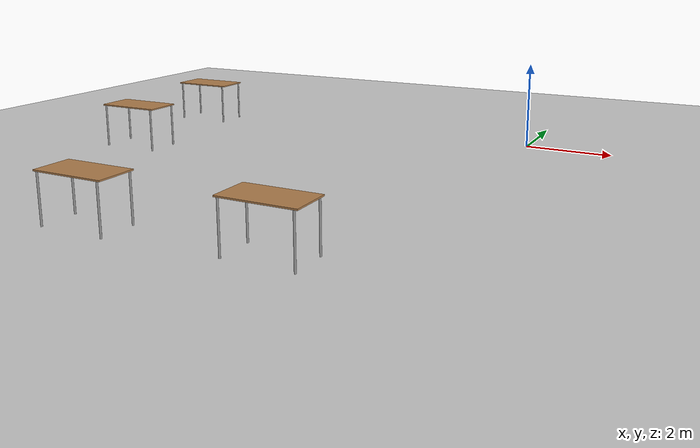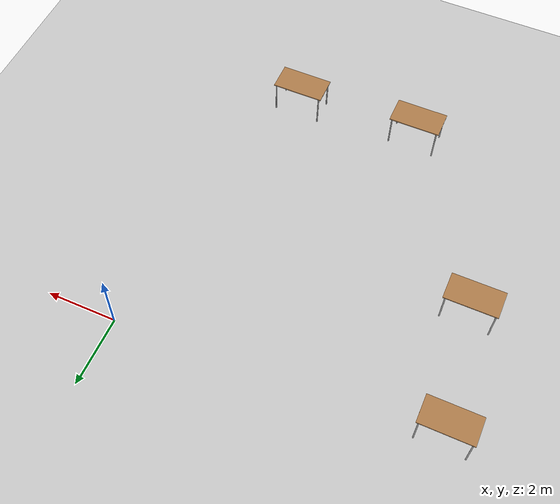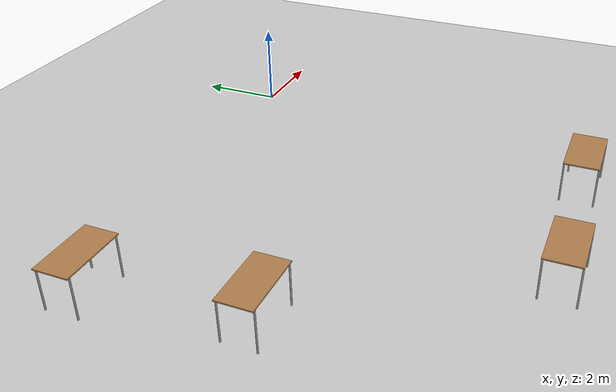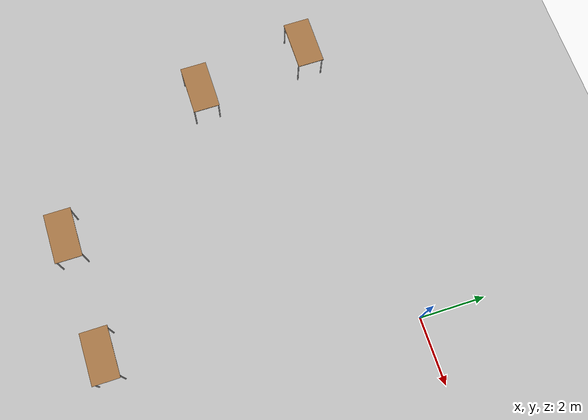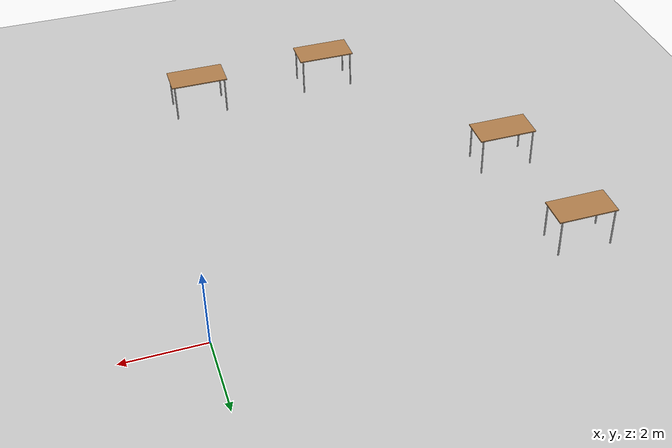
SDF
<sdf version="1.6">
 <world name="default">
  <model name="ground_plane">
   <static>1</static>
   <link name="link">
    <collision name="collision">
     <geometry><plane><normal>0 0 1</normal><size>100 100</size></plane></geometry>
     <surface>
      <contact><collide_bitmask>65535</collide_bitmask></contact>
      <friction><ode><mu>100</mu><mu2>50</mu2></ode></friction>
     </surface>
    </collision>
    <visual name="visual">
     <cast_shadows>0</cast_shadows>
     <geometry><plane><normal>0 0 1</normal><size>100 100</size></plane></geometry>
     <material>
      <script><uri>file://media/materials/scripts/gazebo.material</uri><name>Gazebo/Grey</name></script>
     </material>
    </visual>
   </link>
  </model>
  <model name="table">
   <static>1</static>
   <link name="link">
    <collision name="surface">
     <pose>0 0 1 0 -0 0</pose>
     <geometry><box><size>1.5 0.8 0.03</size></box></geometry>
     <surface><friction><ode><mu>0.6</mu><mu2>0.6</mu2></ode></friction></surface>
    </collision>
    <visual name="visual1">
     <pose>0 0 1 0 -0 0</pose>
     <geometry><box><size>1.5 0.8 0.03</size></box></geometry>
     <material>
      <script><uri>file://media/materials/scripts/gazebo.material</uri><name>Gazebo/Wood</name></script>
     </material>
    </visual>
    <collision name="front_left_leg">
     <pose>0.68 0.38 0.5 0 -0 0</pose>
     <geometry><cylinder><radius>0.02</radius><length>1</length></cylinder></geometry>
    </collision>
    <visual name="front_left_leg">
     <pose>0.68 0.38 0.5 0 -0 0</pose>
     <geometry><cylinder><radius>0.02</radius><length>1</length></cylinder></geometry>
     <material>
      <script><uri>file://media/materials/scripts/gazebo.material</uri><name>Gazebo/Grey</name></script>
     </material>
    </visual>
    <collision name="front_right_leg">
     <pose>0.68 -0.38 0.5 0 -0 0</pose>
     <geometry><cylinder><radius>0.02</radius><length>1</length></cylinder></geometry>
    </collision>
    <visual name="front_right_leg">
     <pose>0.68 -0.38 0.5 0 -0 0</pose>
     <geometry><cylinder><radius>0.02</radius><length>1</length></cylinder></geometry>
     <material>
      <script><uri>file://media/materials/scripts/gazebo.material</uri><name>Gazebo/Grey</name></script>
     </material>
    </visual>
    <collision name="back_right_leg">
     <pose>-0.68 -0.38 0.5 0 -0 0</pose>
     <geometry><cylinder><radius>0.02</radius><length>1</length></cylinder></geometry>
    </collision>
    <visual name="back_right_leg">
     <pose>-0.68 -0.38 0.5 0 -0 0</pose>
     <geometry><cylinder><radius>0.02</radius><length>1</length></cylinder></geometry>
     <material>
      <script><uri>file://media/materials/scripts/gazebo.material</uri><name>Gazebo/Grey</name></script>
     </material>
    </visual>
    <collision name="back_left_leg">
     <pose>-0.68 0.38 0.5 0 -0 0</pose>
     <geometry><cylinder><radius>0.02</radius><length>1</length></cylinder></geometry>
    </collision>
    <visual name="back_left_leg">
     <pose>-0.68 0.38 0.5 0 -0 0</pose>
     <geometry><cylinder><radius>0.02</radius><length>1</length></cylinder></geometry>
     <material>
      <script><uri>file://media/materials/scripts/gazebo.material</uri><name>Gazebo/Grey</name></script>
     </material>
    </visual>
   </link>
   <pose>-8.52505 -4.06307 0 0 -0 0</pose>
  </model>
  <model name="table_0">
   <static>1</static>
   <link name="link">
    <collision name="surface">
     <pose>0 0 1 0 -0 0</pose>
     <geometry><box><size>1.5 0.8 0.03</size></box></geometry>
     <surface><friction><ode><mu>0.6</mu><mu2>0.6</mu2></ode></friction></surface>
    </collision>
    <visual name="visual1">
     <pose>0 0 1 0 -0 0</pose>
     <geometry><box><size>1.5 0.8 0.03</size></box></geometry>
     <material>
      <script><uri>file://media/materials/scripts/gazebo.material</uri><name>Gazebo/Wood</name></script>
     </material>
    </visual>
    <collision name="front_left_leg">
     <pose>0.68 0.38 0.5 0 -0 0</pose>
     <geometry><cylinder><radius>0.02</radius><length>1</length></cylinder></geometry>
    </collision>
    <visual name="front_left_leg">
     <pose>0.68 0.38 0.5 0 -0 0</pose>
     <geometry><cylinder><radius>0.02</radius><length>1</length></cylinder></geometry>
     <material>
      <script><uri>file://media/materials/scripts/gazebo.material</uri><name>Gazebo/Grey</name></script>
     </material>
    </visual>
    <collision name="front_right_leg">
     <pose>0.68 -0.38 0.5 0 -0 0</pose>
     <geometry><cylinder><radius>0.02</radius><length>1</length></cylinder></geometry>
    </collision>
    <visual name="front_right_leg">
     <pose>0.68 -0.38 0.5 0 -0 0</pose>
     <geometry><cylinder><radius>0.02</radius><length>1</length></cylinder></geometry>
     <material>
      <script><uri>file://media/materials/scripts/gazebo.material</uri><name>Gazebo/Grey</name></script>
     </material>
    </visual>
    <collision name="back_right_leg">
     <pose>-0.68 -0.38 0.5 0 -0 0</pose>
     <geometry><cylinder><radius>0.02</radius><length>1</length></cylinder></geometry>
    </collision>
    <visual name="back_right_leg">
     <pose>-0.68 -0.38 0.5 0 -0 0</pose>
     <geometry><cylinder><radius>0.02</radius><length>1</length></cylinder></geometry>
     <material>
      <script><uri>file://media/materials/scripts/gazebo.material</uri><name>Gazebo/Grey</name></script>
     </material>
    </visual>
    <collision name="back_left_leg">
     <pose>-0.68 0.38 0.5 0 -0 0</pose>
     <geometry><cylinder><radius>0.02</radius><length>1</length></cylinder></geometry>
    </collision>
    <visual name="back_left_leg">
     <pose>-0.68 0.38 0.5 0 -0 0</pose>
     <geometry><cylinder><radius>0.02</radius><length>1</length></cylinder></geometry>
     <material>
      <script><uri>file://media/materials/scripts/gazebo.material</uri><name>Gazebo/Grey</name></script>
     </material>
    </visual>
   </link>
   <pose>-9.0063 -0.577641 0 0 -0 0</pose>
  </model>
  <model name="table_1">
   <static>1</static>
   <link name="link">
    <collision name="surface">
     <pose>0 0 1 0 -0 0</pose>
     <geometry><box><size>1.5 0.8 0.03</size></box></geometry>
     <surface><friction><ode><mu>0.6</mu><mu2>0.6</mu2></ode></friction></surface>
    </collision>
    <visual name="visual1">
     <pose>0 0 1 0 -0 0</pose>
     <geometry><box><size>1.5 0.8 0.03</size></box></geometry>
     <material>
      <script><uri>file://media/materials/scripts/gazebo.material</uri><name>Gazebo/Wood</name></script>
     </material>
    </visual>
    <collision name="front_left_leg">
     <pose>0.68 0.38 0.5 0 -0 0</pose>
     <geometry><cylinder><radius>0.02</radius><length>1</length></cylinder></geometry>
    </collision>
    <visual name="front_left_leg">
     <pose>0.68 0.38 0.5 0 -0 0</pose>
     <geometry><cylinder><radius>0.02</radius><length>1</length></cylinder></geometry>
     <material>
      <script><uri>file://media/materials/scripts/gazebo.material</uri><name>Gazebo/Grey</name></script>
     </material>
    </visual>
    <collision name="front_right_leg">
     <pose>0.68 -0.38 0.5 0 -0 0</pose>
     <geometry><cylinder><radius>0.02</radius><length>1</length></cylinder></geometry>
    </collision>
    <visual name="front_right_leg">
     <pose>0.68 -0.38 0.5 0 -0 0</pose>
     <geometry><cylinder><radius>0.02</radius><length>1</length></cylinder></geometry>
     <material>
      <script><uri>file://media/materials/scripts/gazebo.material</uri><name>Gazebo/Grey</name></script>
     </material>
    </visual>
    <collision name="back_right_leg">
     <pose>-0.68 -0.38 0.5 0 -0 0</pose>
     <geometry><cylinder><radius>0.02</radius><length>1</length></cylinder></geometry>
    </collision>
    <visual name="back_right_leg">
     <pose>-0.68 -0.38 0.5 0 -0 0</pose>
     <geometry><cylinder><radius>0.02</radius><length>1</length></cylinder></geometry>
     <material>
      <script><uri>file://media/materials/scripts/gazebo.material</uri><name>Gazebo/Grey</name></script>
     </material>
    </visual>
    <collision name="back_left_leg">
     <pose>-0.68 0.38 0.5 0 -0 0</pose>
     <geometry><cylinder><radius>0.02</radius><length>1</length></cylinder></geometry>
    </collision>
    <visual name="back_left_leg">
     <pose>-0.68 0.38 0.5 0 -0 0</pose>
     <geometry><cylinder><radius>0.02</radius><length>1</length></cylinder></geometry>
     <material>
      <script><uri>file://media/materials/scripts/gazebo.material</uri><name>Gazebo/Grey</name></script>
     </material>
    </visual>
   </link>
   <pose>-5.24431 -9.10074 0 0 -0 0</pose>
  </model>
  <model name="table_2">
   <static>1</static>
   <link name="link">
    <collision name="surface">
     <pose>0 0 1 0 -0 0</pose>
     <geometry><box><size>1.5 0.8 0.03</size></box></geometry>
     <surface><friction><ode><mu>0.6</mu><mu2>0.6</mu2></ode></friction></surface>
    </collision>
    <visual name="visual1">
     <pose>0 0 1 0 -0 0</pose>
     <geometry><box><size>1.5 0.8 0.03</size></box></geometry>
     <material>
      <script><uri>file://media/materials/scripts/gazebo.material</uri><name>Gazebo/Wood</name></script>
     </material>
    </visual>
    <collision name="front_left_leg">
     <pose>0.68 0.38 0.5 0 -0 0</pose>
     <geometry><cylinder><radius>0.02</radius><length>1</length></cylinder></geometry>
    </collision>
    <visual name="front_left_leg">
     <pose>0.68 0.38 0.5 0 -0 0</pose>
     <geometry><cylinder><radius>0.02</radius><length>1</length></cylinder></geometry>
     <material>
      <script><uri>file://media/materials/scripts/gazebo.material</uri><name>Gazebo/Grey</name></script>
     </material>
    </visual>
    <collision name="front_right_leg">
     <pose>0.68 -0.38 0.5 0 -0 0</pose>
     <geometry><cylinder><radius>0.02</radius><length>1</length></cylinder></geometry>
    </collision>
    <visual name="front_right_leg">
     <pose>0.68 -0.38 0.5 0 -0 0</pose>
     <geometry><cylinder><radius>0.02</radius><length>1</length></cylinder></geometry>
     <material>
      <script><uri>file://media/materials/scripts/gazebo.material</uri><name>Gazebo/Grey</name></script>
     </material>
    </visual>
    <collision name="back_right_leg">
     <pose>-0.68 -0.38 0.5 0 -0 0</pose>
     <geometry><cylinder><radius>0.02</radius><length>1</length></cylinder></geometry>
    </collision>
    <visual name="back_right_leg">
     <pose>-0.68 -0.38 0.5 0 -0 0</pose>
     <geometry><cylinder><radius>0.02</radius><length>1</length></cylinder></geometry>
     <material>
      <script><uri>file://media/materials/scripts/gazebo.material</uri><name>Gazebo/Grey</name></script>
     </material>
    </visual>
    <collision name="back_left_leg">
     <pose>-0.68 0.38 0.5 0 -0 0</pose>
     <geometry><cylinder><radius>0.02</radius><length>1</length></cylinder></geometry>
    </collision>
    <visual name="back_left_leg">
     <pose>-0.68 0.38 0.5 0 -0 0</pose>
     <geometry><cylinder><radius>0.02</radius><length>1</length></cylinder></geometry>
     <material>
      <script><uri>file://media/materials/scripts/gazebo.material</uri><name>Gazebo/Grey</name></script>
     </material>
    </visual>
   </link>
   <pose>-1.62294 -8.92111 0 0 -0 0</pose>
  </model>
 </world>
</sdf>
